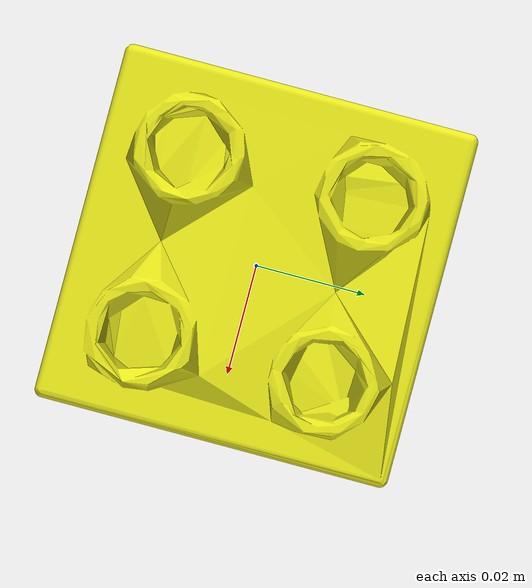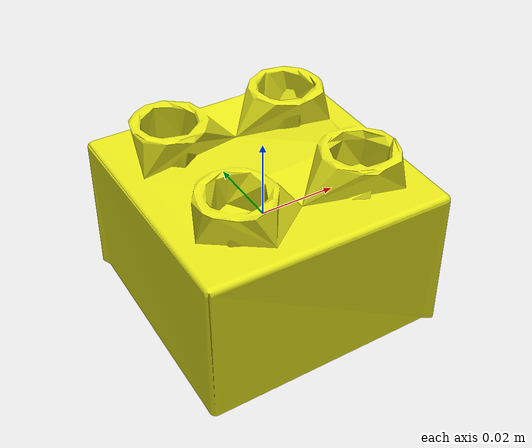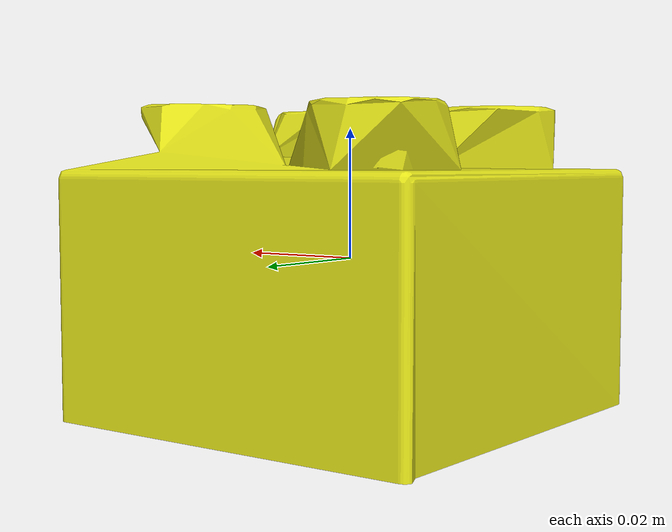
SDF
<?xml version="1.0"?>
<sdf version="1.9">
  <model name="lego_2x2_yellow">
    <link name="link">
      <inertial>
        <mass>0.005</mass>
        <inertia>
          <ixx>2.802e-6</ixx><iyy>2.912e-6</iyy><izz>3.631e-6</izz>
          <ixy>0</ixy><ixz>0</ixz><iyz>0</iyz>
        </inertia>
      </inertial>
      <collision name="collision">
        <geometry>
          <mesh><uri>model://meshes/2x2_base_simplified.obj</uri><scale>2 2 2</scale></mesh>
        </geometry>
      </collision>
      <visual name="visual">
        <geometry>
          <mesh><uri>model://meshes/2x2_base_simplified.obj</uri><scale>2 2 2</scale></mesh>
        </geometry>
        <material>
          <ambient>0.9 0.9 0.1 1</ambient>
          <diffuse>0.9 0.9 0.1 1</diffuse>
        </material>
      </visual>
    </link>
  </model>
</sdf>
